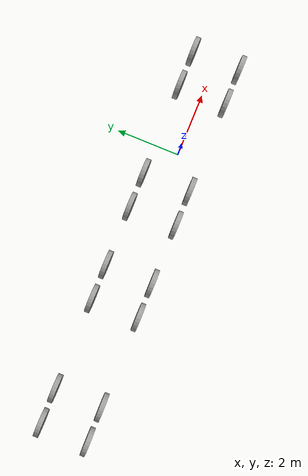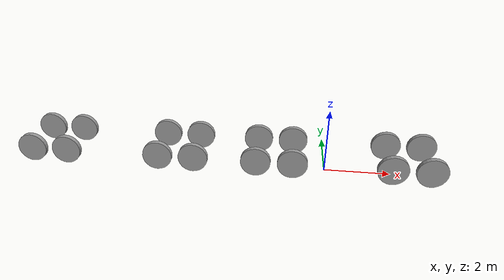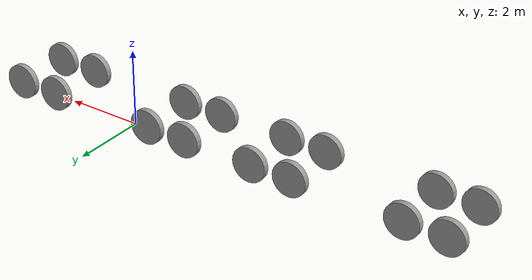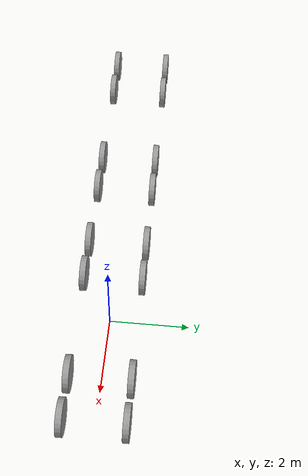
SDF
<sdf version="1.7">
 <world name="default">
  <model name="train_wheels">
   <link name="link">
    <inertial>
     <mass>1</mass>
     <inertia><ixx>0.145833</ixx><ixy>0</ixy><ixz>0</ixz><iyy>0.145833</iyy><iyz>0</iyz><izz>0.125</izz></inertia>
    </inertial>
    <pose>3 0.75 0.6 0 -0 0</pose>
    <visual name="visual">
     <geometry><cylinder><radius>0.45</radius><length>0.15</length></cylinder></geometry>
     <material>
      <script><name>Gazebo/Grey</name><uri>file://media/materials/scripts/gazebo.material</uri></script>
      <shader type="pixel"><normal_map>__default__</normal_map></shader>
      <ambient>0.3 0.3 0.3 1</ambient>
      <diffuse>0.7 0.7 0.7 1</diffuse>
      <specular>0.01 0.01 0.01 1</specular>
      <emissive>0 0 0 1</emissive>
     </material>
     <pose>0 0 0 1.5708 -0 0</pose>
    </visual>
    <collision name="collision">
     <geometry><cylinder><radius>0.45</radius><length>0.15</length></cylinder></geometry>
     <material>
      <script><name>Gazebo/Grey</name><uri>file://media/materials/scripts/gazebo.material</uri></script>
      <shader type="pixel"><normal_map>__default__</normal_map></shader>
      <ambient>0.3 0.3 0.3 1</ambient>
      <diffuse>0.7 0.7 0.7 1</diffuse>
      <specular>0.01 0.01 0.01 1</specular>
      <emissive>0 0 0 1</emissive>
     </material>
     <pose>0 0 0 1.5708 -0 0</pose>
    </collision>
   </link>
   <link name="link_clone">
    <inertial>
     <mass>1</mass>
     <inertia><ixx>0.145833</ixx><ixy>0</ixy><ixz>0</ixz><iyy>0.145833</iyy><iyz>0</iyz><izz>0.125</izz></inertia>
    </inertial>
    <pose>1.9 0.75 0.6 0 -0 0</pose>
    <visual name="visual">
     <geometry><cylinder><radius>0.45</radius><length>0.15</length></cylinder></geometry>
     <material>
      <script><name>Gazebo/Grey</name><uri>file://media/materials/scripts/gazebo.material</uri></script>
      <shader type="pixel"><normal_map>__default__</normal_map></shader>
      <ambient>0.3 0.3 0.3 1</ambient>
      <diffuse>0.7 0.7 0.7 1</diffuse>
      <specular>0.01 0.01 0.01 1</specular>
      <emissive>0 0 0 1</emissive>
     </material>
     <pose>0 0 0 1.5708 -0 0</pose>
    </visual>
    <collision name="collision">
     <geometry><cylinder><radius>0.45</radius><length>0.15</length></cylinder></geometry>
     <material>
      <script><name>Gazebo/Grey</name><uri>file://media/materials/scripts/gazebo.material</uri></script>
      <shader type="pixel"><normal_map>__default__</normal_map></shader>
      <ambient>0.3 0.3 0.3 1</ambient>
      <diffuse>0.7 0.7 0.7 1</diffuse>
      <specular>0.01 0.01 0.01 1</specular>
      <emissive>0 0 0 1</emissive>
     </material>
     <pose>0 0 0 1.5708 -0 0</pose>
    </collision>
   </link>
   <link name="link_clone_0">
    <inertial>
     <mass>1</mass>
     <inertia><ixx>0.145833</ixx><ixy>0</ixy><ixz>0</ixz><iyy>0.145833</iyy><iyz>0</iyz><izz>0.125</izz></inertia>
    </inertial>
    <pose>3 -0.75 0.6 0 -0 0</pose>
    <visual name="visual">
     <geometry><cylinder><radius>0.45</radius><length>0.15</length></cylinder></geometry>
     <material>
      <script><name>Gazebo/Grey</name><uri>file://media/materials/scripts/gazebo.material</uri></script>
      <shader type="pixel"><normal_map>__default__</normal_map></shader>
      <ambient>0.3 0.3 0.3 1</ambient>
      <diffuse>0.7 0.7 0.7 1</diffuse>
      <specular>0.01 0.01 0.01 1</specular>
      <emissive>0 0 0 1</emissive>
     </material>
     <pose>0 0 0 1.5708 -0 0</pose>
    </visual>
    <collision name="collision">
     <geometry><cylinder><radius>0.45</radius><length>0.15</length></cylinder></geometry>
     <material>
      <script><name>Gazebo/Grey</name><uri>file://media/materials/scripts/gazebo.material</uri></script>
      <shader type="pixel"><normal_map>__default__</normal_map></shader>
      <ambient>0.3 0.3 0.3 1</ambient>
      <diffuse>0.7 0.7 0.7 1</diffuse>
      <specular>0.01 0.01 0.01 1</specular>
      <emissive>0 0 0 1</emissive>
     </material>
     <pose>0 0 0 1.5708 -0 0</pose>
    </collision>
   </link>
   <link name="link_clone_0_clone">
    <inertial>
     <mass>1</mass>
     <inertia><ixx>0.145833</ixx><ixy>0</ixy><ixz>0</ixz><iyy>0.145833</iyy><iyz>0</iyz><izz>0.125</izz></inertia>
    </inertial>
    <pose>1.9 -0.75 0.6 0 -0 0</pose>
    <visual name="visual">
     <geometry><cylinder><radius>0.45</radius><length>0.15</length></cylinder></geometry>
     <material>
      <script><name>Gazebo/Grey</name><uri>file://media/materials/scripts/gazebo.material</uri></script>
      <shader type="pixel"><normal_map>__default__</normal_map></shader>
      <ambient>0.3 0.3 0.3 1</ambient>
      <diffuse>0.7 0.7 0.7 1</diffuse>
      <specular>0.01 0.01 0.01 1</specular>
      <emissive>0 0 0 1</emissive>
     </material>
     <pose>0 0 0 1.5708 -0 0</pose>
    </visual>
    <collision name="collision">
     <geometry><cylinder><radius>0.45</radius><length>0.15</length></cylinder></geometry>
     <material>
      <script><name>Gazebo/Grey</name><uri>file://media/materials/scripts/gazebo.material</uri></script>
      <shader type="pixel"><normal_map>__default__</normal_map></shader>
      <ambient>0.3 0.3 0.3 1</ambient>
      <diffuse>0.7 0.7 0.7 1</diffuse>
      <specular>0.01 0.01 0.01 1</specular>
      <emissive>0 0 0 1</emissive>
     </material>
     <pose>0 0 0 1.5708 -0 0</pose>
    </collision>
   </link>
   <link name="link_clone_0_clone_clone">
    <inertial>
     <mass>1</mass>
     <inertia><ixx>0.145833</ixx><ixy>0</ixy><ixz>0</ixz><iyy>0.145833</iyy><iyz>0</iyz><izz>0.125</izz></inertia>
    </inertial>
    <pose>-1 -0.75 0.6 0 -0 0</pose>
    <visual name="visual">
     <geometry><cylinder><radius>0.45</radius><length>0.15</length></cylinder></geometry>
     <material>
      <script><name>Gazebo/Grey</name><uri>file://media/materials/scripts/gazebo.material</uri></script>
      <shader type="pixel"><normal_map>__default__</normal_map></shader>
      <ambient>0.3 0.3 0.3 1</ambient>
      <diffuse>0.7 0.7 0.7 1</diffuse>
      <specular>0.01 0.01 0.01 1</specular>
      <emissive>0 0 0 1</emissive>
     </material>
     <pose>0 0 0 1.5708 -0 0</pose>
    </visual>
    <collision name="collision">
     <geometry><cylinder><radius>0.45</radius><length>0.15</length></cylinder></geometry>
     <material>
      <script><name>Gazebo/Grey</name><uri>file://media/materials/scripts/gazebo.material</uri></script>
      <shader type="pixel"><normal_map>__default__</normal_map></shader>
      <ambient>0.3 0.3 0.3 1</ambient>
      <diffuse>0.7 0.7 0.7 1</diffuse>
      <specular>0.01 0.01 0.01 1</specular>
      <emissive>0 0 0 1</emissive>
     </material>
     <pose>0 0 0 1.5708 -0 0</pose>
    </collision>
   </link>
   <link name="link_clone_0_clone_clone_clone">
    <inertial>
     <mass>1</mass>
     <inertia><ixx>0.145833</ixx><ixy>0</ixy><ixz>0</ixz><iyy>0.145833</iyy><iyz>0</iyz><izz>0.125</izz></inertia>
    </inertial>
    <pose>-2.1 -0.75 0.6 0 -0 0</pose>
    <visual name="visual">
     <geometry><cylinder><radius>0.45</radius><length>0.15</length></cylinder></geometry>
     <material>
      <script><name>Gazebo/Grey</name><uri>file://media/materials/scripts/gazebo.material</uri></script>
      <shader type="pixel"><normal_map>__default__</normal_map></shader>
      <ambient>0.3 0.3 0.3 1</ambient>
      <diffuse>0.7 0.7 0.7 1</diffuse>
      <specular>0.01 0.01 0.01 1</specular>
      <emissive>0 0 0 1</emissive>
     </material>
     <pose>0 0 0 1.5708 -0 0</pose>
    </visual>
    <collision name="collision">
     <geometry><cylinder><radius>0.45</radius><length>0.15</length></cylinder></geometry>
     <material>
      <script><name>Gazebo/Grey</name><uri>file://media/materials/scripts/gazebo.material</uri></script>
      <shader type="pixel"><normal_map>__default__</normal_map></shader>
      <ambient>0.3 0.3 0.3 1</ambient>
      <diffuse>0.7 0.7 0.7 1</diffuse>
      <specular>0.01 0.01 0.01 1</specular>
      <emissive>0 0 0 1</emissive>
     </material>
     <pose>0 0 0 1.5708 -0 0</pose>
    </collision>
   </link>
   <link name="link_clone_clone">
    <inertial>
     <mass>1</mass>
     <inertia><ixx>0.145833</ixx><ixy>0</ixy><ixz>0</ixz><iyy>0.145833</iyy><iyz>0</iyz><izz>0.125</izz></inertia>
    </inertial>
    <pose>-1 0.75 0.6 0 -0 0</pose>
    <visual name="visual">
     <geometry><cylinder><radius>0.45</radius><length>0.15</length></cylinder></geometry>
     <material>
      <script><name>Gazebo/Grey</name><uri>file://media/materials/scripts/gazebo.material</uri></script>
      <shader type="pixel"><normal_map>__default__</normal_map></shader>
      <ambient>0.3 0.3 0.3 1</ambient>
      <diffuse>0.7 0.7 0.7 1</diffuse>
      <specular>0.01 0.01 0.01 1</specular>
      <emissive>0 0 0 1</emissive>
     </material>
     <pose>0 0 0 1.5708 -0 0</pose>
    </visual>
    <collision name="collision">
     <geometry><cylinder><radius>0.45</radius><length>0.15</length></cylinder></geometry>
     <material>
      <script><name>Gazebo/Grey</name><uri>file://media/materials/scripts/gazebo.material</uri></script>
      <shader type="pixel"><normal_map>__default__</normal_map></shader>
      <ambient>0.3 0.3 0.3 1</ambient>
      <diffuse>0.7 0.7 0.7 1</diffuse>
      <specular>0.01 0.01 0.01 1</specular>
      <emissive>0 0 0 1</emissive>
     </material>
     <pose>0 0 0 1.5708 -0 0</pose>
    </collision>
   </link>
   <link name="link_clone_clone_clone">
    <inertial>
     <mass>1</mass>
     <inertia><ixx>0.145833</ixx><ixy>0</ixy><ixz>0</ixz><iyy>0.145833</iyy><iyz>0</iyz><izz>0.125</izz></inertia>
    </inertial>
    <pose>-2.1 0.75 0.6 0 -0 0</pose>
    <visual name="visual">
     <geometry><cylinder><radius>0.45</radius><length>0.15</length></cylinder></geometry>
     <material>
      <script><name>Gazebo/Grey</name><uri>file://media/materials/scripts/gazebo.material</uri></script>
      <shader type="pixel"><normal_map>__default__</normal_map></shader>
      <ambient>0.3 0.3 0.3 1</ambient>
      <diffuse>0.7 0.7 0.7 1</diffuse>
      <specular>0.01 0.01 0.01 1</specular>
      <emissive>0 0 0 1</emissive>
     </material>
     <pose>0 0 0 1.5708 -0 0</pose>
    </visual>
    <collision name="collision">
     <geometry><cylinder><radius>0.45</radius><length>0.15</length></cylinder></geometry>
     <material>
      <script><name>Gazebo/Grey</name><uri>file://media/materials/scripts/gazebo.material</uri></script>
      <shader type="pixel"><normal_map>__default__</normal_map></shader>
      <ambient>0.3 0.3 0.3 1</ambient>
      <diffuse>0.7 0.7 0.7 1</diffuse>
      <specular>0.01 0.01 0.01 1</specular>
      <emissive>0 0 0 1</emissive>
     </material>
     <pose>0 0 0 1.5708 -0 0</pose>
    </collision>
   </link>
   <static>1</static>
  </model>
  <model name="train_wheels_clone">
   <link name="link">
    <inertial>
     <mass>1</mass>
     <inertia><ixx>0.145833</ixx><ixy>0</ixy><ixz>0</ixz><iyy>0.145833</iyy><iyz>0</iyz><izz>0.125</izz></inertia>
    </inertial>
    <pose>3 0.75 0.6 0 -0 0</pose>
    <visual name="visual">
     <geometry><cylinder><radius>0.45</radius><length>0.15</length></cylinder></geometry>
     <material>
      <script><name>Gazebo/Grey</name><uri>file://media/materials/scripts/gazebo.material</uri></script>
      <shader type="pixel"><normal_map>__default__</normal_map></shader>
      <ambient>0.3 0.3 0.3 1</ambient>
      <diffuse>0.7 0.7 0.7 1</diffuse>
      <specular>0.01 0.01 0.01 1</specular>
      <emissive>0 0 0 1</emissive>
     </material>
     <pose>0 0 0 1.5708 -0 0</pose>
    </visual>
    <collision name="collision">
     <geometry><cylinder><radius>0.45</radius><length>0.15</length></cylinder></geometry>
     <material>
      <script><name>Gazebo/Grey</name><uri>file://media/materials/scripts/gazebo.material</uri></script>
      <shader type="pixel"><normal_map>__default__</normal_map></shader>
      <ambient>0.3 0.3 0.3 1</ambient>
      <diffuse>0.7 0.7 0.7 1</diffuse>
      <specular>0.01 0.01 0.01 1</specular>
      <emissive>0 0 0 1</emissive>
     </material>
     <pose>0 0 0 1.5708 -0 0</pose>
    </collision>
   </link>
   <link name="link_clone">
    <inertial>
     <mass>1</mass>
     <inertia><ixx>0.145833</ixx><ixy>0</ixy><ixz>0</ixz><iyy>0.145833</iyy><iyz>0</iyz><izz>0.125</izz></inertia>
    </inertial>
    <pose>1.9 0.75 0.6 0 -0 0</pose>
    <visual name="visual">
     <geometry><cylinder><radius>0.45</radius><length>0.15</length></cylinder></geometry>
     <material>
      <script><name>Gazebo/Grey</name><uri>file://media/materials/scripts/gazebo.material</uri></script>
      <shader type="pixel"><normal_map>__default__</normal_map></shader>
      <ambient>0.3 0.3 0.3 1</ambient>
      <diffuse>0.7 0.7 0.7 1</diffuse>
      <specular>0.01 0.01 0.01 1</specular>
      <emissive>0 0 0 1</emissive>
     </material>
     <pose>0 0 0 1.5708 -0 0</pose>
    </visual>
    <collision name="collision">
     <geometry><cylinder><radius>0.45</radius><length>0.15</length></cylinder></geometry>
     <material>
      <script><name>Gazebo/Grey</name><uri>file://media/materials/scripts/gazebo.material</uri></script>
      <shader type="pixel"><normal_map>__default__</normal_map></shader>
      <ambient>0.3 0.3 0.3 1</ambient>
      <diffuse>0.7 0.7 0.7 1</diffuse>
      <specular>0.01 0.01 0.01 1</specular>
      <emissive>0 0 0 1</emissive>
     </material>
     <pose>0 0 0 1.5708 -0 0</pose>
    </collision>
   </link>
   <link name="link_clone_0">
    <inertial>
     <mass>1</mass>
     <inertia><ixx>0.145833</ixx><ixy>0</ixy><ixz>0</ixz><iyy>0.145833</iyy><iyz>0</iyz><izz>0.125</izz></inertia>
    </inertial>
    <pose>3 -0.75 0.6 0 -0 0</pose>
    <visual name="visual">
     <geometry><cylinder><radius>0.45</radius><length>0.15</length></cylinder></geometry>
     <material>
      <script><name>Gazebo/Grey</name><uri>file://media/materials/scripts/gazebo.material</uri></script>
      <shader type="pixel"><normal_map>__default__</normal_map></shader>
      <ambient>0.3 0.3 0.3 1</ambient>
      <diffuse>0.7 0.7 0.7 1</diffuse>
      <specular>0.01 0.01 0.01 1</specular>
      <emissive>0 0 0 1</emissive>
     </material>
     <pose>0 0 0 1.5708 -0 0</pose>
    </visual>
    <collision name="collision">
     <geometry><cylinder><radius>0.45</radius><length>0.15</length></cylinder></geometry>
     <material>
      <script><name>Gazebo/Grey</name><uri>file://media/materials/scripts/gazebo.material</uri></script>
      <shader type="pixel"><normal_map>__default__</normal_map></shader>
      <ambient>0.3 0.3 0.3 1</ambient>
      <diffuse>0.7 0.7 0.7 1</diffuse>
      <specular>0.01 0.01 0.01 1</specular>
      <emissive>0 0 0 1</emissive>
     </material>
     <pose>0 0 0 1.5708 -0 0</pose>
    </collision>
   </link>
   <link name="link_clone_0_clone">
    <inertial>
     <mass>1</mass>
     <inertia><ixx>0.145833</ixx><ixy>0</ixy><ixz>0</ixz><iyy>0.145833</iyy><iyz>0</iyz><izz>0.125</izz></inertia>
    </inertial>
    <pose>1.9 -0.75 0.6 0 -0 0</pose>
    <visual name="visual">
     <geometry><cylinder><radius>0.45</radius><length>0.15</length></cylinder></geometry>
     <material>
      <script><name>Gazebo/Grey</name><uri>file://media/materials/scripts/gazebo.material</uri></script>
      <shader type="pixel"><normal_map>__default__</normal_map></shader>
      <ambient>0.3 0.3 0.3 1</ambient>
      <diffuse>0.7 0.7 0.7 1</diffuse>
      <specular>0.01 0.01 0.01 1</specular>
      <emissive>0 0 0 1</emissive>
     </material>
     <pose>0 0 0 1.5708 -0 0</pose>
    </visual>
    <collision name="collision">
     <geometry><cylinder><radius>0.45</radius><length>0.15</length></cylinder></geometry>
     <material>
      <script><name>Gazebo/Grey</name><uri>file://media/materials/scripts/gazebo.material</uri></script>
      <shader type="pixel"><normal_map>__default__</normal_map></shader>
      <ambient>0.3 0.3 0.3 1</ambient>
      <diffuse>0.7 0.7 0.7 1</diffuse>
      <specular>0.01 0.01 0.01 1</specular>
      <emissive>0 0 0 1</emissive>
     </material>
     <pose>0 0 0 1.5708 -0 0</pose>
    </collision>
   </link>
   <link name="link_clone_0_clone_clone">
    <inertial>
     <mass>1</mass>
     <inertia><ixx>0.145833</ixx><ixy>0</ixy><ixz>0</ixz><iyy>0.145833</iyy><iyz>0</iyz><izz>0.125</izz></inertia>
    </inertial>
    <pose>-1 -0.75 0.6 0 -0 0</pose>
    <visual name="visual">
     <geometry><cylinder><radius>0.45</radius><length>0.15</length></cylinder></geometry>
     <material>
      <script><name>Gazebo/Grey</name><uri>file://media/materials/scripts/gazebo.material</uri></script>
      <shader type="pixel"><normal_map>__default__</normal_map></shader>
      <ambient>0.3 0.3 0.3 1</ambient>
      <diffuse>0.7 0.7 0.7 1</diffuse>
      <specular>0.01 0.01 0.01 1</specular>
      <emissive>0 0 0 1</emissive>
     </material>
     <pose>0 0 0 1.5708 -0 0</pose>
    </visual>
    <collision name="collision">
     <geometry><cylinder><radius>0.45</radius><length>0.15</length></cylinder></geometry>
     <material>
      <script><name>Gazebo/Grey</name><uri>file://media/materials/scripts/gazebo.material</uri></script>
      <shader type="pixel"><normal_map>__default__</normal_map></shader>
      <ambient>0.3 0.3 0.3 1</ambient>
      <diffuse>0.7 0.7 0.7 1</diffuse>
      <specular>0.01 0.01 0.01 1</specular>
      <emissive>0 0 0 1</emissive>
     </material>
     <pose>0 0 0 1.5708 -0 0</pose>
    </collision>
   </link>
   <link name="link_clone_0_clone_clone_clone">
    <inertial>
     <mass>1</mass>
     <inertia><ixx>0.145833</ixx><ixy>0</ixy><ixz>0</ixz><iyy>0.145833</iyy><iyz>0</iyz><izz>0.125</izz></inertia>
    </inertial>
    <pose>-2.1 -0.75 0.6 0 -0 0</pose>
    <visual name="visual">
     <geometry><cylinder><radius>0.45</radius><length>0.15</length></cylinder></geometry>
     <material>
      <script><name>Gazebo/Grey</name><uri>file://media/materials/scripts/gazebo.material</uri></script>
      <shader type="pixel"><normal_map>__default__</normal_map></shader>
      <ambient>0.3 0.3 0.3 1</ambient>
      <diffuse>0.7 0.7 0.7 1</diffuse>
      <specular>0.01 0.01 0.01 1</specular>
      <emissive>0 0 0 1</emissive>
     </material>
     <pose>0 0 0 1.5708 -0 0</pose>
    </visual>
    <collision name="collision">
     <geometry><cylinder><radius>0.45</radius><length>0.15</length></cylinder></geometry>
     <material>
      <script><name>Gazebo/Grey</name><uri>file://media/materials/scripts/gazebo.material</uri></script>
      <shader type="pixel"><normal_map>__default__</normal_map></shader>
      <ambient>0.3 0.3 0.3 1</ambient>
      <diffuse>0.7 0.7 0.7 1</diffuse>
      <specular>0.01 0.01 0.01 1</specular>
      <emissive>0 0 0 1</emissive>
     </material>
     <pose>0 0 0 1.5708 -0 0</pose>
    </collision>
   </link>
   <link name="link_clone_clone">
    <inertial>
     <mass>1</mass>
     <inertia><ixx>0.145833</ixx><ixy>0</ixy><ixz>0</ixz><iyy>0.145833</iyy><iyz>0</iyz><izz>0.125</izz></inertia>
    </inertial>
    <pose>-1 0.75 0.6 0 -0 0</pose>
    <visual name="visual">
     <geometry><cylinder><radius>0.45</radius><length>0.15</length></cylinder></geometry>
     <material>
      <script><name>Gazebo/Grey</name><uri>file://media/materials/scripts/gazebo.material</uri></script>
      <shader type="pixel"><normal_map>__default__</normal_map></shader>
      <ambient>0.3 0.3 0.3 1</ambient>
      <diffuse>0.7 0.7 0.7 1</diffuse>
      <specular>0.01 0.01 0.01 1</specular>
      <emissive>0 0 0 1</emissive>
     </material>
     <pose>0 0 0 1.5708 -0 0</pose>
    </visual>
    <collision name="collision">
     <geometry><cylinder><radius>0.45</radius><length>0.15</length></cylinder></geometry>
     <material>
      <script><name>Gazebo/Grey</name><uri>file://media/materials/scripts/gazebo.material</uri></script>
      <shader type="pixel"><normal_map>__default__</normal_map></shader>
      <ambient>0.3 0.3 0.3 1</ambient>
      <diffuse>0.7 0.7 0.7 1</diffuse>
      <specular>0.01 0.01 0.01 1</specular>
      <emissive>0 0 0 1</emissive>
     </material>
     <pose>0 0 0 1.5708 -0 0</pose>
    </collision>
   </link>
   <link name="link_clone_clone_clone">
    <inertial>
     <mass>1</mass>
     <inertia><ixx>0.145833</ixx><ixy>0</ixy><ixz>0</ixz><iyy>0.145833</iyy><iyz>0</iyz><izz>0.125</izz></inertia>
    </inertial>
    <pose>-2.1 0.75 0.6 0 -0 0</pose>
    <visual name="visual">
     <geometry><cylinder><radius>0.45</radius><length>0.15</length></cylinder></geometry>
     <material>
      <script><name>Gazebo/Grey</name><uri>file://media/materials/scripts/gazebo.material</uri></script>
      <shader type="pixel"><normal_map>__default__</normal_map></shader>
      <ambient>0.3 0.3 0.3 1</ambient>
      <diffuse>0.7 0.7 0.7 1</diffuse>
      <specular>0.01 0.01 0.01 1</specular>
      <emissive>0 0 0 1</emissive>
     </material>
     <pose>0 0 0 1.5708 -0 0</pose>
    </visual>
    <collision name="collision">
     <geometry><cylinder><radius>0.45</radius><length>0.15</length></cylinder></geometry>
     <material>
      <script><name>Gazebo/Grey</name><uri>file://media/materials/scripts/gazebo.material</uri></script>
      <shader type="pixel"><normal_map>__default__</normal_map></shader>
      <ambient>0.3 0.3 0.3 1</ambient>
      <diffuse>0.7 0.7 0.7 1</diffuse>
      <specular>0.01 0.01 0.01 1</specular>
      <emissive>0 0 0 1</emissive>
     </material>
     <pose>0 0 0 1.5708 -0 0</pose>
    </collision>
   </link>
   <static>1</static>
   <pose>-7 0 0 0 -0 0</pose>
  </model>
 </world>
</sdf>
